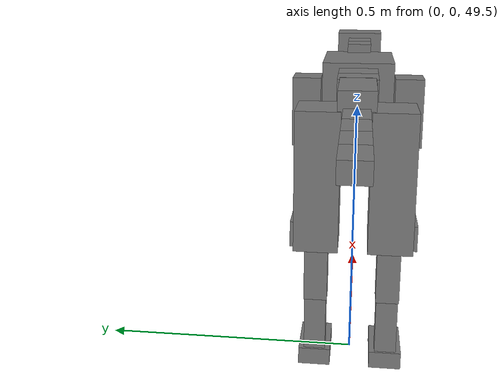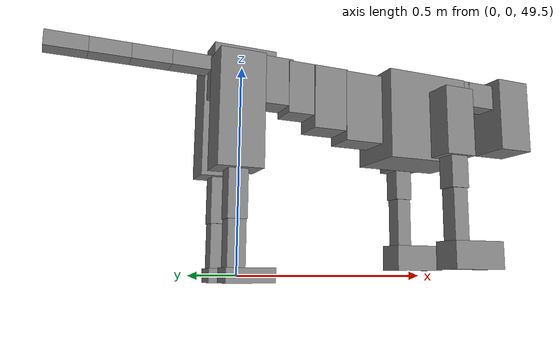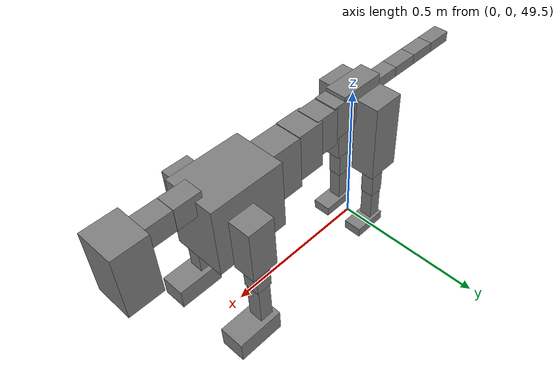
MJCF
<mujoco model="dog">

    <default>
        <joint armature="0.02" stiffness="1" damping="0.2" limited="true"/>
        <geom condim="3" friction="1 0.05 0.05" margin="0.01"/>
        <motor ctrllimited="true" ctrlrange="-1.0 1.0" forcelimited="true" gear="50"/>
    </default>

    <compiler inertiafromgeom="true" angle="radian"/>

    <option timestep="0.016" iterations="50" tolerance="1e-10" solver="Newton" jacobian="dense" cone="pyramidal"/>

    <size nconmax="20000" njmax="60000" nstack="5000000"/>
    <visual>
        <map force="0.1" zfar="30"/>
        <rgba haze="0.15 0.25 0.35 1"/>
        <quality shadowsize="2048"/>
        <global offwidth="800" offheight="800"/>
    </visual>

    <asset>
        <texture type="skybox" builtin="gradient" rgb1="0.3 0.5 0.7" rgb2="0 0 0" width="512" height="512"/>
        <texture name="texplane" type="2d" builtin="checker" rgb1=".2 .3 .4" rgb2=".1 0.15 0.2" width="512" height="512"
                 mark="cross" markrgb=".8 .8 .8"/>
        <texture name="texgeom" type="cube" builtin="flat" mark="cross" width="127" height="1278" rgb1="0.8 0.6 0.4"
                 rgb2="0.8 0.6 0.4" markrgb="1 1 1" random="0.01"/>

        <material name="matplane" reflectance="0.3" texture="texplane" texrepeat="1 1" texuniform="true"/>
        <material name="matgeom" texture="texgeom" texuniform="true" rgba="0.8 0.6 .4 1"/>
    </asset>

    <worldbody>
        <geom name="floor" pos="0 0 0" size="0 0 .25" type="plane" material="matplane" condim="3"/>

        <light directional="false" diffuse=".2 .2 .2" specular="0 0 0" pos="0 0 5" dir="0 0 -1" castshadow="false"/>
        <light mode="targetbodycom" target="torso" directional="false" diffuse=".8 .8 .8" specular="0.3 0.3 0.3"
               pos="0 0 4.0" dir="0 0 -1"/>

        <body name="root" pos="0 0 50">
            <freejoint name="root_1"/>
            <geom type="box" pos="0 0 -0.02" size="0.0774  0.0358  0.063" density="2030"/>

            <body name="spine1" pos="0.054 0 0">
                <joint name="spine1_y" axis="0 1 0" range="0 0.7" limited="true"/>
                <geom type="box" pos="0.02375 0 -0.03" size="0.04375  0.0375  0.05985" density="2030"/>

                <body name="spine2" pos="0.0612 0 0">
                    <joint name="spine2_y" axis="0 1 0" range="-0.15 0.15" limited="true"/>
                    <geom type="box" pos="0.03555  0  -0.04" size="0.04055  0.039  0.06615" density="2030"/>

                    <body name="spine3" pos="0.0730 0 0">
                        <joint name="spine3_y" axis="0 1 0" range="-0.15 0.15" limited="true"/>
                        <geom type="box" pos="0.03555  0  -0.057" size="0.04555  0.0445  0.081" density="2030"/>

                        <body name="spine4" pos="0.0780 0 0">
                            <joint name="spine4_y" axis="0 1 0" range="-0.15 0.15" limited="true"/>
                            <geom type="box" pos="0.05265  0  -0.07" size="0.05265  0.045  0.09135" density="2030"/>

                            <body name="torso" pos="0.1082 0 0">
                                <joint name="torso_y" axis="0 1 0" range="-0.15 0.15" limited="true"/>
                                <geom type="box" pos="0.11925  0  -0.085" size="0.11925  0.085  0.11745"
                                      density="2030"/>

                                <body name="neck1" pos="0.2160  0   0.0180">
                                    <joint name="neck1_y" axis="0 1 0" range="-1.2  -1" limited="true"/>
                                    <geom type="box" pos="0.0423  0  0" size="0.0423  0.03  0.036" density="2325"/>

                                    <body name="neck2" pos="0.0853  0  0">
                                        <joint name="neck2_y" axis="0 1 0" range="0.1  0" limited="true"/>
                                        <geom type="box" pos="0.0423  0  0" size="0.0423  0.03  0.036" density="2325"/>

                                        <body name="head" pos="0.0853  0  0">
                                            <joint name="head_y" axis="0 1 0" range="-0.3  -0.2" limited="true"/>
                                            <geom type="box" pos="0.0531  0  -0.055" size="0.0531  0.06  0.1044"
                                                  density="4030"/>

                                        </body>
                                    </body>
                                </body>

                                <body name="front_shoulder" pos="0.156  0   -0.0480">
                                    <joint name="front_shoulder_y" axis="0 1 0" range="-1 1.5" limited="true"/>
                                    <geom type="box" pos="0 0.13 -0.0620" size="0.0424  0.0362  0.0886" density="1158"/>
                                    <geom type="box" pos="0 -0.13 -0.0620" size="0.0424  0.0362  0.0886"
                                          density="1158"/>

                                    <body name="front_elbow" pos="0  0  -0.1239">
                                        <joint name="front_elbow_y" axis="0 1 0" range="-2 0" limited="true"/>
                                        <geom type="box" pos="0 0.13 -0.0545" size="0.0252  0.0258  0.0545"
                                              density="1081"/>
                                        <geom type="box" pos="0 -0.13 -0.0545" size="0.0252  0.0258  0.0545"
                                              density="1081"/>

                                        <body name="front_wrist" pos="0  0  -0.1090">
                                            <joint name="front_wrist_y" axis="0 1 0" range="-0.2 0" limited="true"/>
                                            <geom type="box" pos="0 0.13 -0.0742" size="0.0213  0.0236  0.0874"
                                                  density="1664"/>
                                            <geom type="box" pos="0 -0.13 -0.0742" size="0.0213  0.0236  0.0874"
                                                  density="1664"/>

                                            <body name="front_finger_end" pos="0  0  -0.1485">
                                                <joint name="front_finger_y" axis="0 1 0" range="-0.4 1"
                                                       limited="true"/>
                                                <geom type="box" pos="0.0406  0.13  -0.0201"
                                                      size="0.0745  0.0406  0.0351" density="1515"/>
                                                <geom type="box" pos="0.0406  -0.13  -0.0201"
                                                      size="0.0745  0.0406  0.0351" density="1515"/>

                                            </body>

                                        </body>
                                    </body>
                                </body>

                            </body>
                        </body>
                    </body>
                </body>
            </body>

            <body name="back_hip" pos="-0.03 0 -0.018">
                <joint name="back_hip_y" axis="0 1 0" range="-1.5 0.3" limited="true"/>
                <geom type="box" pos="0 0.07 -0.1122" size="0.0537  0.0421  0.1350" density="1154"/>
                <geom type="box" pos="0 -0.07 -0.1122" size="0.0537  0.0421  0.1350" density="1154"/>

                <body name="back_knee" pos="0  0  -0.2245">
                    <joint name="back_knee_y" axis="0 1 0" range="0 2.8" limited="true"/>
                    <geom type="box" pos="0 0.07 -0.0595" size="0.0229  0.0226  0.0751" density="1227"/>
                    <geom type="box" pos="0 -0.07 -0.0595" size="0.0229  0.0226  0.0751" density="1227"/>

                    <body name="back_ankle" pos="0  0  -0.1190">
                        <joint name="back_ankle_y" axis="0 1 0" range="-2.2 0" limited="true"/>
                        <geom type="box" pos="0 0.07 -0.0682" size="0.0210  0.0210  0.0794" density="1284"/>
                        <geom type="box" pos="0 -0.07 -0.0682" size="0.0210  0.0210  0.0794" density="1284"/>

                        <body name="back_toe_end" pos="0  0  -0.1364">
                            <joint name="back_toe_y" axis="0 1 0" range="-0.4 1" limited="true"/>
                            <geom type="box" pos="0.0311  0.07  -0.0018" size="0.0569  0.0311  0.0168" density="1515"/>
                            <geom type="box" pos="0.0311  -0.07  -0.0018" size="0.0569  0.0311  0.0168" density="1515"/>

                        </body>
                    </body>
                </body>
            </body>

            <body name="tail1" pos="-0.074 0 -0.006">
                <joint name="tail1_y" axis="0 1 0" range="-0.2 0.2" limited="true"/>
                <geom type="box" pos="-0.0536  0  0" size="0.045  0.025  0.0175" density="1587"/>

                <body name="tail2" pos="-0.09 0 0">
                    <joint name="tail2_y" axis="0 1 0" range="-0.2 0.2" limited="true"/>
                    <geom type="box" pos="-0.0536  0  0" size="0.045  0.025  0.0175" density="1587"/>

                    <body name="tail3" pos="-0.09 0 0">
                        <joint name="tail3_y" axis="0 1 0" range="-0.2 0.2" limited="true"/>
                        <geom type="box" pos="-0.0536  0  0" size="0.045  0.025  0.0175" density="1587"/>

                        <body name="tail4" pos="-0.09 0 0">
                            <joint name="tail4_y" axis="0 1 0" range="-0.2 0.2" limited="true"/>
                            <geom type="box" pos="-0.0536  0  0" size="0.045  0.025  0.0175" density="1587"/>

                        </body>
                    </body>
                </body>
            </body>
        </body>
    </worldbody>

    <actuator>
        <motor joint="spine1_y" forcerange="-150 150     "/>
        <motor joint="spine2_y" forcerange="-150 150     "/>
        <motor joint="spine3_y" forcerange="-150 150     "/>
        <motor joint="spine4_y" forcerange="-150 150     "/>
        <motor joint="torso_y" forcerange="-150 150     "/>
        <motor joint="neck1_y" forcerange="-100 100       "/>
        <motor joint="neck2_y" forcerange="-100 100       "/>
        <motor joint="head_y" forcerange="-150 150       "/>
        <motor joint="front_shoulder_y" forcerange="-174.02 167.36"/>
        <motor joint="front_elbow_y" forcerange="-114.69 172.76"/>
        <motor joint="front_wrist_y" forcerange="-127.50 61.56"/>
        <motor joint="front_finger_y" forcerange="-83.87 92.88"/>
        <motor joint="back_hip_y" forcerange="-364.35 396.81"/>
        <motor joint="back_knee_y" forcerange="-236.04 292.14"/>
        <motor joint="back_angle_y" forcerange="-70.70 165.85"/>
        <motor joint="back_toe_y" forcerange="-77.95 90.46"/>
        <motor joint="tail1_y" forcerange="-50 50     "/>
        <motor joint="tail2_y" forcerange="-50 50     "/>
        <motor joint="tail3_y" forcerange="-50 50     "/>
        <motor joint="tail4_y" forcerange="-50 50     "/>
    </actuator>
</mujoco>
